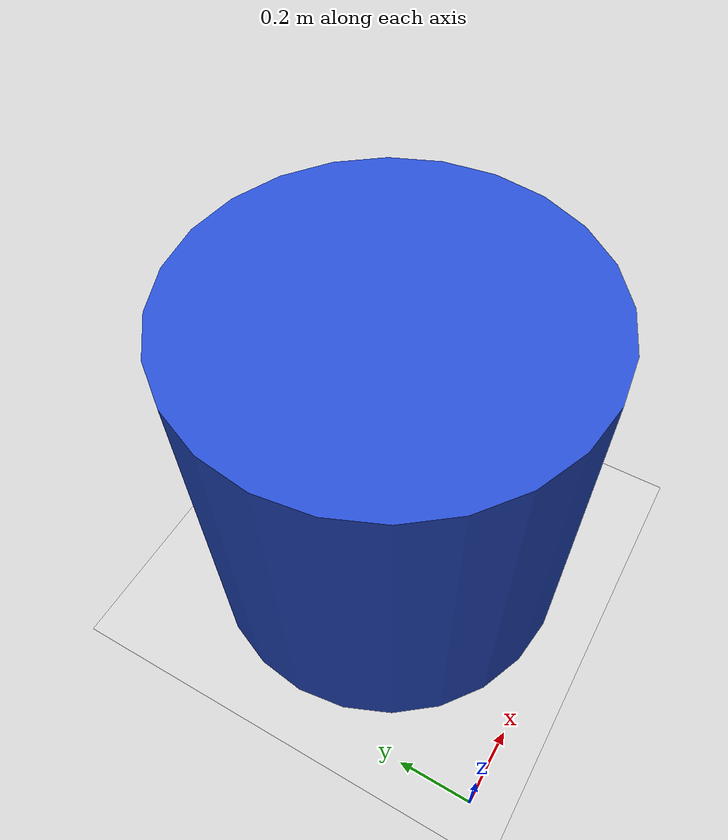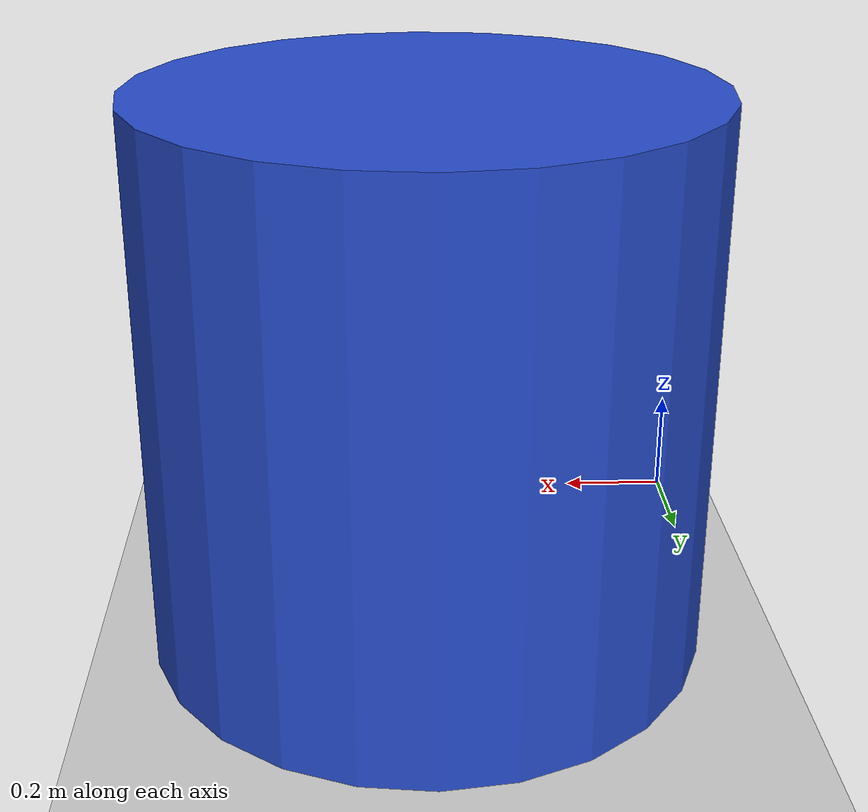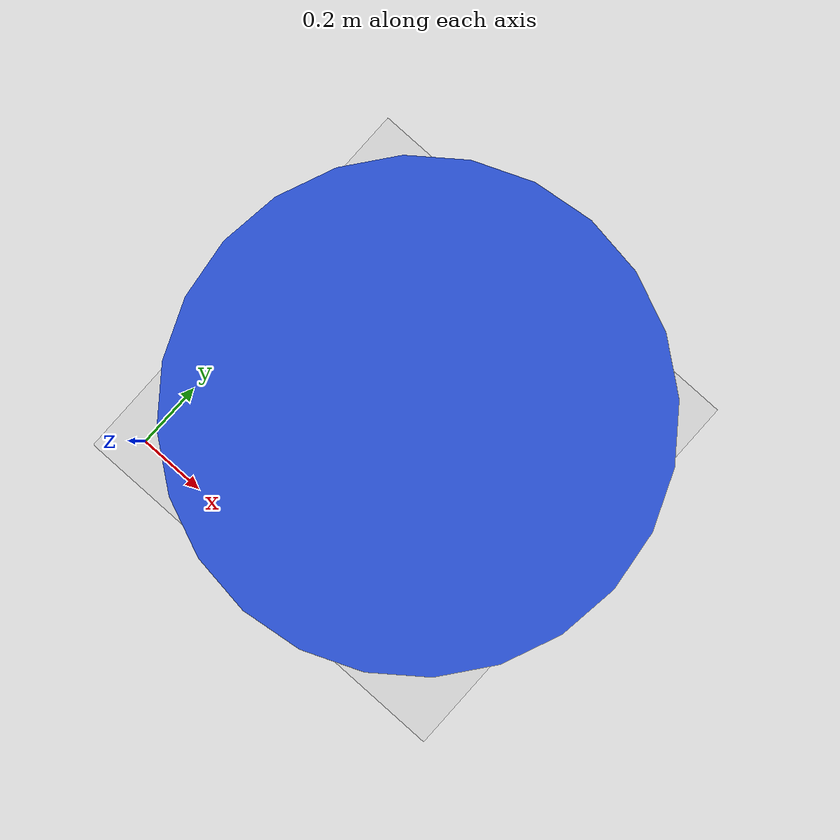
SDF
<sdf version="1.4">
  <world name="default">

    <scene>
      <ambient>0.4 0.4 0.4 1</ambient>
      <background>0.7 0.7 0.7 1</background>
      <shadows>false</shadows>
    </scene>

    <!-- A global light source -->
    <include>
      <uri>model://sun</uri>
    </include>

    <!-- A ground plane -->
    <include>
      <uri>model://ground_plane</uri>
    </include>

    <!-- cylinder obstacle -->
    <model name='obstacle_cylinder'>
      <pose>0.534416 0.532241 0.5 0 -0 0</pose>
      <link name='link'>
        <inertial>
          <mass>1</mass>
          <inertia>
            <ixx>0.145833</ixx>
            <ixy>0</ixy>
            <ixz>0</ixz>
            <iyy>0.145833</iyy>
            <iyz>0</iyz>
            <izz>0.125</izz>
          </inertia>
          <pose>0 0 0 0 -0 0</pose>
        </inertial>
        <collision name='collision'>
          <geometry>
            <cylinder>
              <radius>0.5</radius>
              <length>1</length>
            </cylinder>
          </geometry>
          <max_contacts>10</max_contacts>
          <surface>
            <contact>
              <ode/>
            </contact>
            <bounce/>
            <friction>
              <torsional>
                <ode/>
              </torsional>
              <ode/>
            </friction>
          </surface>
        </collision>
        <visual name='visual'>
          <geometry>
            <cylinder>
              <radius>0.5</radius>
              <length>1</length>
            </cylinder>
          </geometry>
          <material>
            <script>
              <name>Gazebo/BlueGlow</name>
              <uri>file://media/materials/scripts/gazebo.material</uri>
            </script>
          </material>
        </visual>
        <self_collide>0</self_collide>
        <enable_wind>0</enable_wind>
        <kinematic>0</kinematic>
      </link>
    </model>

    <physics type="ode">
      <real_time_update_rate>1000.0</real_time_update_rate>
      <max_step_size>0.001</max_step_size>
      <real_time_factor>1</real_time_factor>
      <ode>
        <solver>
          <type>quick</type>
          <iters>150</iters>
          <precon_iters>0</precon_iters>
          <sor>1.400000</sor>
          <use_dynamic_moi_rescaling>1</use_dynamic_moi_rescaling>
        </solver>
        <constraints>
          <cfm>0.00001</cfm>
          <erp>0.2</erp>
          <contact_max_correcting_vel>2000.000000</contact_max_correcting_vel>
          <contact_surface_layer>0.01000</contact_surface_layer>
        </constraints>
      </ode>
    </physics>
  </world>

</sdf>
